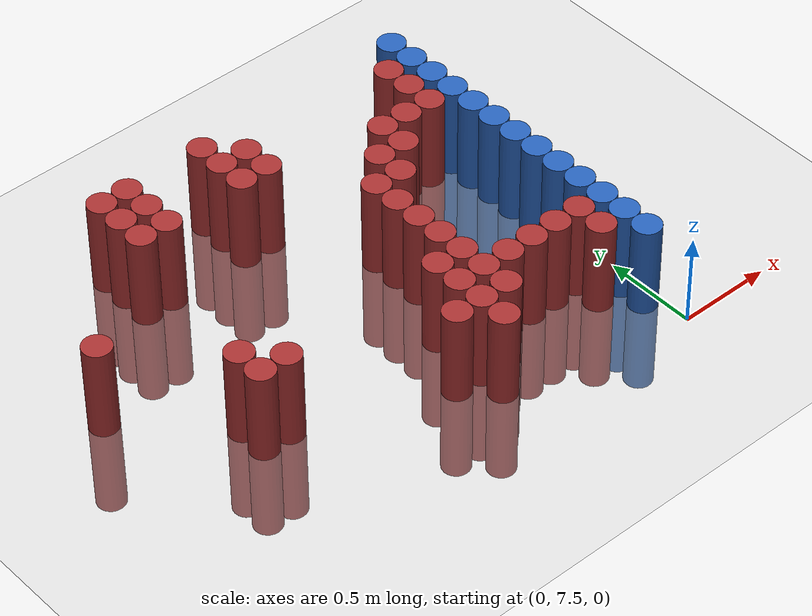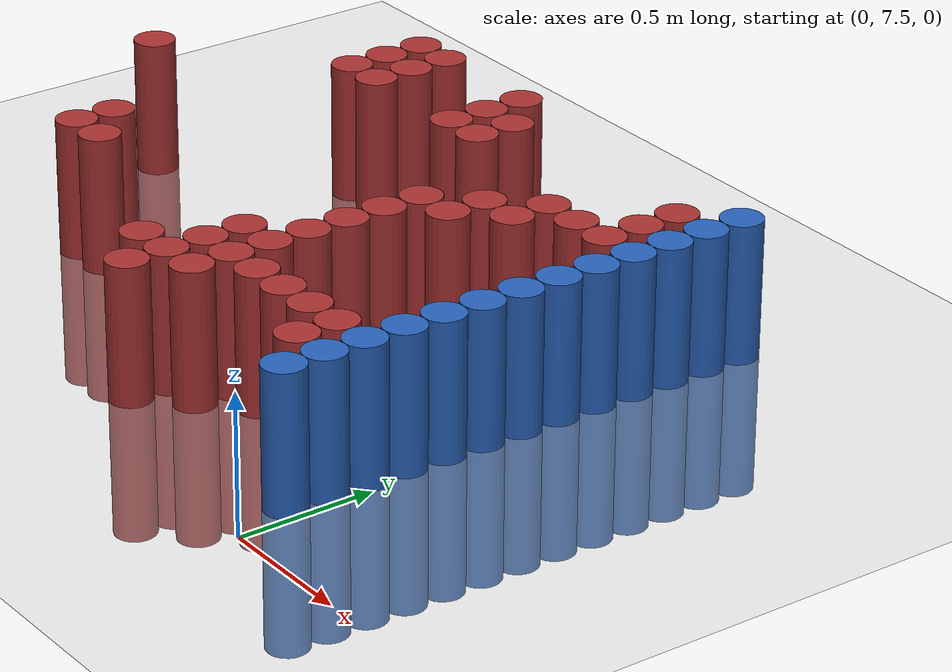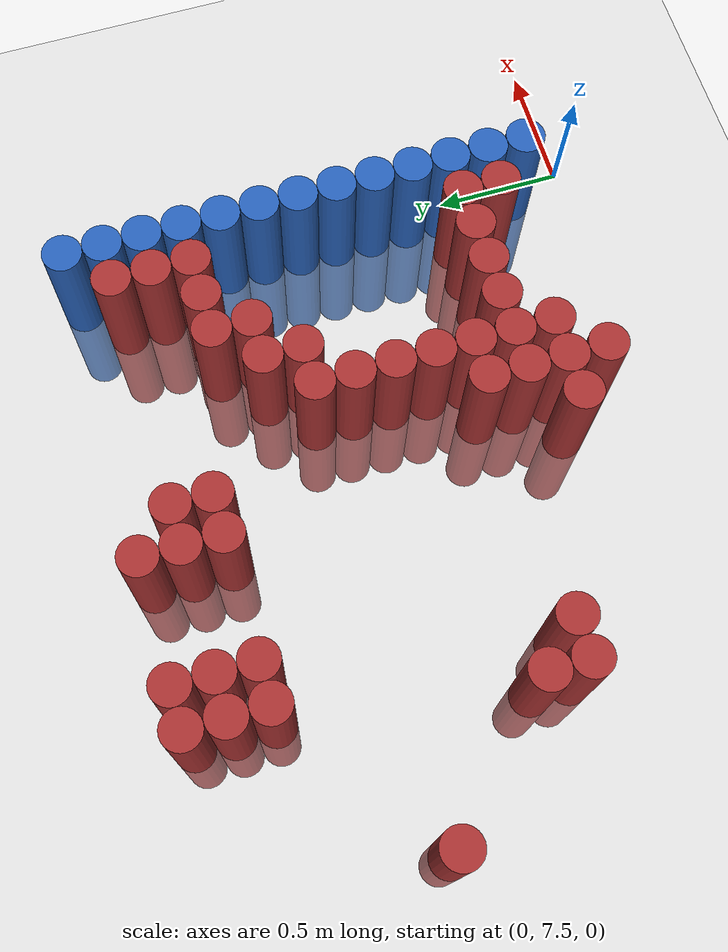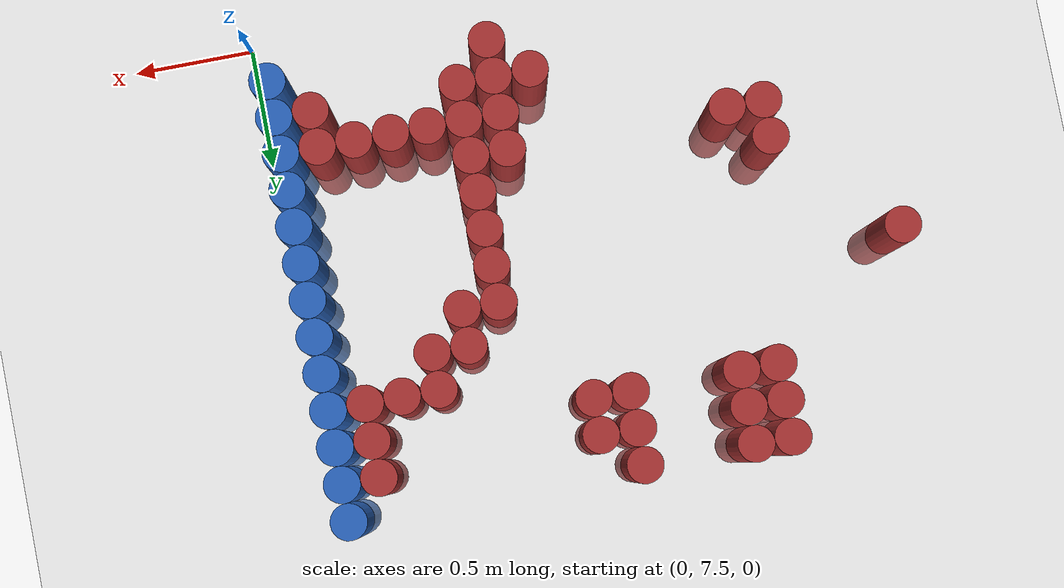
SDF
<sdf version="1.6">
 <world name="default">
  <model name="ground_plane">
   <static>1</static>
   <link name="link">
    <collision name="collision">
     <geometry><plane><normal>0 0 1</normal><size>100 100</size></plane></geometry>
     <surface><friction><ode><mu>100</mu><mu2>50</mu2></ode></friction></surface>
    </collision>
    <visual name="visual">
     <cast_shadows>0</cast_shadows>
     <geometry><plane><normal>0 0 1</normal><size>100 100</size></plane></geometry>
     <material>
      <script><uri>file://media/materials/scripts/gazebo.material</uri><name>Gazebo/Grey</name></script>
     </material>
    </visual>
   </link>
  </model>
  <model name="unit_cylinder_174">
   <static>1</static>
   <pose>-2.475000 8.775000 0.000000 0.000000 0.000000 0.000000</pose>
   <link name="link">
    <inertial>
     <mass>1</mass>
     <inertia><ixx>0.145833</ixx><ixy>0</ixy><ixz>0</ixz><iyy>0.145833</iyy><iyz>0</iyz><izz>0.125</izz></inertia>
    </inertial>
    <collision name="collision">
     <geometry><cylinder><radius>0.075000</radius><length>1</length></cylinder></geometry>
    </collision>
    <visual name="visual">
     <geometry><cylinder><radius>0.075000</radius><length>1</length></cylinder></geometry>
     <material>
      <ambient>0.648000 0.192000 0.192000 1</ambient>
      <diffuse>0.648000 0.192000 0.192000 1</diffuse>
     </material>
     <material>
      <script><name>Gazebo/Grey</name><uri>file://media/materials/scripts/gazebo.material</uri></script>
     </material>
    </visual>
   </link>
  </model>
  <model name="unit_cylinder_191">
   <static>1</static>
   <pose>-2.025000 8.175000 0.000000 0.000000 0.000000 0.000000</pose>
   <link name="link">
    <inertial>
     <mass>1</mass>
     <inertia><ixx>0.145833</ixx><ixy>0</ixy><ixz>0</ixz><iyy>0.145833</iyy><iyz>0</iyz><izz>0.125</izz></inertia>
    </inertial>
    <collision name="collision">
     <geometry><cylinder><radius>0.075000</radius><length>1</length></cylinder></geometry>
    </collision>
    <visual name="visual">
     <geometry><cylinder><radius>0.075000</radius><length>1</length></cylinder></geometry>
     <material>
      <ambient>0.648000 0.192000 0.192000 1</ambient>
      <diffuse>0.648000 0.192000 0.192000 1</diffuse>
     </material>
     <material>
      <script><name>Gazebo/Grey</name><uri>file://media/materials/scripts/gazebo.material</uri></script>
     </material>
    </visual>
   </link>
  </model>
  <model name="unit_cylinder_192">
   <static>1</static>
   <pose>-2.025000 8.325000 0.000000 0.000000 0.000000 0.000000</pose>
   <link name="link">
    <inertial>
     <mass>1</mass>
     <inertia><ixx>0.145833</ixx><ixy>0</ixy><ixz>0</ixz><iyy>0.145833</iyy><iyz>0</iyz><izz>0.125</izz></inertia>
    </inertial>
    <collision name="collision">
     <geometry><cylinder><radius>0.075000</radius><length>1</length></cylinder></geometry>
    </collision>
    <visual name="visual">
     <geometry><cylinder><radius>0.075000</radius><length>1</length></cylinder></geometry>
     <material>
      <ambient>0.648000 0.192000 0.192000 1</ambient>
      <diffuse>0.648000 0.192000 0.192000 1</diffuse>
     </material>
     <material>
      <script><name>Gazebo/Grey</name><uri>file://media/materials/scripts/gazebo.material</uri></script>
     </material>
    </visual>
   </link>
  </model>
  <model name="unit_cylinder_201">
   <static>1</static>
   <pose>-1.875000 8.175000 0.000000 0.000000 0.000000 0.000000</pose>
   <link name="link">
    <inertial>
     <mass>1</mass>
     <inertia><ixx>0.145833</ixx><ixy>0</ixy><ixz>0</ixz><iyy>0.145833</iyy><iyz>0</iyz><izz>0.125</izz></inertia>
    </inertial>
    <collision name="collision">
     <geometry><cylinder><radius>0.075000</radius><length>1</length></cylinder></geometry>
    </collision>
    <visual name="visual">
     <geometry><cylinder><radius>0.075000</radius><length>1</length></cylinder></geometry>
     <material>
      <ambient>0.648000 0.192000 0.192000 1</ambient>
      <diffuse>0.648000 0.192000 0.192000 1</diffuse>
     </material>
     <material>
      <script><name>Gazebo/Grey</name><uri>file://media/materials/scripts/gazebo.material</uri></script>
     </material>
    </visual>
   </link>
  </model>
  <model name="unit_cylinder_202">
   <static>1</static>
   <pose>-1.875000 9.225000 0.000000 0.000000 0.000000 0.000000</pose>
   <link name="link">
    <inertial>
     <mass>1</mass>
     <inertia><ixx>0.145833</ixx><ixy>0</ixy><ixz>0</ixz><iyy>0.145833</iyy><iyz>0</iyz><izz>0.125</izz></inertia>
    </inertial>
    <collision name="collision">
     <geometry><cylinder><radius>0.075000</radius><length>1</length></cylinder></geometry>
    </collision>
    <visual name="visual">
     <geometry><cylinder><radius>0.075000</radius><length>1</length></cylinder></geometry>
     <material>
      <ambient>0.648000 0.192000 0.192000 1</ambient>
      <diffuse>0.648000 0.192000 0.192000 1</diffuse>
     </material>
     <material>
      <script><name>Gazebo/Grey</name><uri>file://media/materials/scripts/gazebo.material</uri></script>
     </material>
    </visual>
   </link>
  </model>
  <model name="unit_cylinder_203">
   <static>1</static>
   <pose>-1.875000 9.375000 0.000000 0.000000 0.000000 0.000000</pose>
   <link name="link">
    <inertial>
     <mass>1</mass>
     <inertia><ixx>0.145833</ixx><ixy>0</ixy><ixz>0</ixz><iyy>0.145833</iyy><iyz>0</iyz><izz>0.125</izz></inertia>
    </inertial>
    <collision name="collision">
     <geometry><cylinder><radius>0.075000</radius><length>1</length></cylinder></geometry>
    </collision>
    <visual name="visual">
     <geometry><cylinder><radius>0.075000</radius><length>1</length></cylinder></geometry>
     <material>
      <ambient>0.648000 0.192000 0.192000 1</ambient>
      <diffuse>0.648000 0.192000 0.192000 1</diffuse>
     </material>
     <material>
      <script><name>Gazebo/Grey</name><uri>file://media/materials/scripts/gazebo.material</uri></script>
     </material>
    </visual>
   </link>
  </model>
  <model name="unit_cylinder_204">
   <static>1</static>
   <pose>-1.875000 9.525000 0.000000 0.000000 0.000000 0.000000</pose>
   <link name="link">
    <inertial>
     <mass>1</mass>
     <inertia><ixx>0.145833</ixx><ixy>0</ixy><ixz>0</ixz><iyy>0.145833</iyy><iyz>0</iyz><izz>0.125</izz></inertia>
    </inertial>
    <collision name="collision">
     <geometry><cylinder><radius>0.075000</radius><length>1</length></cylinder></geometry>
    </collision>
    <visual name="visual">
     <geometry><cylinder><radius>0.075000</radius><length>1</length></cylinder></geometry>
     <material>
      <ambient>0.648000 0.192000 0.192000 1</ambient>
      <diffuse>0.648000 0.192000 0.192000 1</diffuse>
     </material>
     <material>
      <script><name>Gazebo/Grey</name><uri>file://media/materials/scripts/gazebo.material</uri></script>
     </material>
    </visual>
   </link>
  </model>
  <model name="unit_cylinder_211">
   <static>1</static>
   <pose>-1.725000 9.225000 0.000000 0.000000 0.000000 0.000000</pose>
   <link name="link">
    <inertial>
     <mass>1</mass>
     <inertia><ixx>0.145833</ixx><ixy>0</ixy><ixz>0</ixz><iyy>0.145833</iyy><iyz>0</iyz><izz>0.125</izz></inertia>
    </inertial>
    <collision name="collision">
     <geometry><cylinder><radius>0.075000</radius><length>1</length></cylinder></geometry>
    </collision>
    <visual name="visual">
     <geometry><cylinder><radius>0.075000</radius><length>1</length></cylinder></geometry>
     <material>
      <ambient>0.648000 0.192000 0.192000 1</ambient>
      <diffuse>0.648000 0.192000 0.192000 1</diffuse>
     </material>
     <material>
      <script><name>Gazebo/Grey</name><uri>file://media/materials/scripts/gazebo.material</uri></script>
     </material>
    </visual>
   </link>
  </model>
  <model name="unit_cylinder_212">
   <static>1</static>
   <pose>-1.725000 9.375000 0.000000 0.000000 0.000000 0.000000</pose>
   <link name="link">
    <inertial>
     <mass>1</mass>
     <inertia><ixx>0.145833</ixx><ixy>0</ixy><ixz>0</ixz><iyy>0.145833</iyy><iyz>0</iyz><izz>0.125</izz></inertia>
    </inertial>
    <collision name="collision">
     <geometry><cylinder><radius>0.075000</radius><length>1</length></cylinder></geometry>
    </collision>
    <visual name="visual">
     <geometry><cylinder><radius>0.075000</radius><length>1</length></cylinder></geometry>
     <material>
      <ambient>0.648000 0.192000 0.192000 1</ambient>
      <diffuse>0.648000 0.192000 0.192000 1</diffuse>
     </material>
     <material>
      <script><name>Gazebo/Grey</name><uri>file://media/materials/scripts/gazebo.material</uri></script>
     </material>
    </visual>
   </link>
  </model>
  <model name="unit_cylinder_213">
   <static>1</static>
   <pose>-1.725000 9.525000 0.000000 0.000000 0.000000 0.000000</pose>
   <link name="link">
    <inertial>
     <mass>1</mass>
     <inertia><ixx>0.145833</ixx><ixy>0</ixy><ixz>0</ixz><iyy>0.145833</iyy><iyz>0</iyz><izz>0.125</izz></inertia>
    </inertial>
    <collision name="collision">
     <geometry><cylinder><radius>0.075000</radius><length>1</length></cylinder></geometry>
    </collision>
    <visual name="visual">
     <geometry><cylinder><radius>0.075000</radius><length>1</length></cylinder></geometry>
     <material>
      <ambient>0.648000 0.192000 0.192000 1</ambient>
      <diffuse>0.648000 0.192000 0.192000 1</diffuse>
     </material>
     <material>
      <script><name>Gazebo/Grey</name><uri>file://media/materials/scripts/gazebo.material</uri></script>
     </material>
    </visual>
   </link>
  </model>
  <model name="unit_cylinder_223">
   <static>1</static>
   <pose>-1.275000 9.225000 0.000000 0.000000 0.000000 0.000000</pose>
   <link name="link">
    <inertial>
     <mass>1</mass>
     <inertia><ixx>0.145833</ixx><ixy>0</ixy><ixz>0</ixz><iyy>0.145833</iyy><iyz>0</iyz><izz>0.125</izz></inertia>
    </inertial>
    <collision name="collision">
     <geometry><cylinder><radius>0.075000</radius><length>1</length></cylinder></geometry>
    </collision>
    <visual name="visual">
     <geometry><cylinder><radius>0.075000</radius><length>1</length></cylinder></geometry>
     <material>
      <ambient>0.648000 0.192000 0.192000 1</ambient>
      <diffuse>0.648000 0.192000 0.192000 1</diffuse>
     </material>
     <material>
      <script><name>Gazebo/Grey</name><uri>file://media/materials/scripts/gazebo.material</uri></script>
     </material>
    </visual>
   </link>
  </model>
  <model name="unit_cylinder_224">
   <static>1</static>
   <pose>-1.275000 9.375000 0.000000 0.000000 0.000000 0.000000</pose>
   <link name="link">
    <inertial>
     <mass>1</mass>
     <inertia><ixx>0.145833</ixx><ixy>0</ixy><ixz>0</ixz><iyy>0.145833</iyy><iyz>0</iyz><izz>0.125</izz></inertia>
    </inertial>
    <collision name="collision">
     <geometry><cylinder><radius>0.075000</radius><length>1</length></cylinder></geometry>
    </collision>
    <visual name="visual">
     <geometry><cylinder><radius>0.075000</radius><length>1</length></cylinder></geometry>
     <material>
      <ambient>0.648000 0.192000 0.192000 1</ambient>
      <diffuse>0.648000 0.192000 0.192000 1</diffuse>
     </material>
     <material>
      <script><name>Gazebo/Grey</name><uri>file://media/materials/scripts/gazebo.material</uri></script>
     </material>
    </visual>
   </link>
  </model>
  <model name="unit_cylinder_225">
   <static>1</static>
   <pose>-1.275000 9.525000 0.000000 0.000000 0.000000 0.000000</pose>
   <link name="link">
    <inertial>
     <mass>1</mass>
     <inertia><ixx>0.145833</ixx><ixy>0</ixy><ixz>0</ixz><iyy>0.145833</iyy><iyz>0</iyz><izz>0.125</izz></inertia>
    </inertial>
    <collision name="collision">
     <geometry><cylinder><radius>0.075000</radius><length>1</length></cylinder></geometry>
    </collision>
    <visual name="visual">
     <geometry><cylinder><radius>0.075000</radius><length>1</length></cylinder></geometry>
     <material>
      <ambient>0.648000 0.192000 0.192000 1</ambient>
      <diffuse>0.648000 0.192000 0.192000 1</diffuse>
     </material>
     <material>
      <script><name>Gazebo/Grey</name><uri>file://media/materials/scripts/gazebo.material</uri></script>
     </material>
    </visual>
   </link>
  </model>
  <model name="unit_cylinder_231">
   <static>1</static>
   <pose>-1.125000 7.875000 0.000000 0.000000 0.000000 0.000000</pose>
   <link name="link">
    <inertial>
     <mass>1</mass>
     <inertia><ixx>0.145833</ixx><ixy>0</ixy><ixz>0</ixz><iyy>0.145833</iyy><iyz>0</iyz><izz>0.125</izz></inertia>
    </inertial>
    <collision name="collision">
     <geometry><cylinder><radius>0.075000</radius><length>1</length></cylinder></geometry>
    </collision>
    <visual name="visual">
     <geometry><cylinder><radius>0.075000</radius><length>1</length></cylinder></geometry>
     <material>
      <ambient>0.648000 0.192000 0.192000 1</ambient>
      <diffuse>0.648000 0.192000 0.192000 1</diffuse>
     </material>
     <material>
      <script><name>Gazebo/Grey</name><uri>file://media/materials/scripts/gazebo.material</uri></script>
     </material>
    </visual>
   </link>
  </model>
  <model name="unit_cylinder_232">
   <static>1</static>
   <pose>-1.125000 9.225000 0.000000 0.000000 0.000000 0.000000</pose>
   <link name="link">
    <inertial>
     <mass>1</mass>
     <inertia><ixx>0.145833</ixx><ixy>0</ixy><ixz>0</ixz><iyy>0.145833</iyy><iyz>0</iyz><izz>0.125</izz></inertia>
    </inertial>
    <collision name="collision">
     <geometry><cylinder><radius>0.075000</radius><length>1</length></cylinder></geometry>
    </collision>
    <visual name="visual">
     <geometry><cylinder><radius>0.075000</radius><length>1</length></cylinder></geometry>
     <material>
      <ambient>0.648000 0.192000 0.192000 1</ambient>
      <diffuse>0.648000 0.192000 0.192000 1</diffuse>
     </material>
     <material>
      <script><name>Gazebo/Grey</name><uri>file://media/materials/scripts/gazebo.material</uri></script>
     </material>
    </visual>
   </link>
  </model>
  <model name="unit_cylinder_233">
   <static>1</static>
   <pose>-1.125000 9.375000 0.000000 0.000000 0.000000 0.000000</pose>
   <link name="link">
    <inertial>
     <mass>1</mass>
     <inertia><ixx>0.145833</ixx><ixy>0</ixy><ixz>0</ixz><iyy>0.145833</iyy><iyz>0</iyz><izz>0.125</izz></inertia>
    </inertial>
    <collision name="collision">
     <geometry><cylinder><radius>0.075000</radius><length>1</length></cylinder></geometry>
    </collision>
    <visual name="visual">
     <geometry><cylinder><radius>0.075000</radius><length>1</length></cylinder></geometry>
     <material>
      <ambient>0.648000 0.192000 0.192000 1</ambient>
      <diffuse>0.648000 0.192000 0.192000 1</diffuse>
     </material>
     <material>
      <script><name>Gazebo/Grey</name><uri>file://media/materials/scripts/gazebo.material</uri></script>
     </material>
    </visual>
   </link>
  </model>
  <model name="unit_cylinder_239">
   <static>1</static>
   <pose>-0.975000 7.725000 0.000000 0.000000 0.000000 0.000000</pose>
   <link name="link">
    <inertial>
     <mass>1</mass>
     <inertia><ixx>0.145833</ixx><ixy>0</ixy><ixz>0</ixz><iyy>0.145833</iyy><iyz>0</iyz><izz>0.125</izz></inertia>
    </inertial>
    <collision name="collision">
     <geometry><cylinder><radius>0.075000</radius><length>1</length></cylinder></geometry>
    </collision>
    <visual name="visual">
     <geometry><cylinder><radius>0.075000</radius><length>1</length></cylinder></geometry>
     <material>
      <ambient>0.648000 0.192000 0.192000 1</ambient>
      <diffuse>0.648000 0.192000 0.192000 1</diffuse>
     </material>
     <material>
      <script><name>Gazebo/Grey</name><uri>file://media/materials/scripts/gazebo.material</uri></script>
     </material>
    </visual>
   </link>
  </model>
  <model name="unit_cylinder_240">
   <static>1</static>
   <pose>-0.975000 7.875000 0.000000 0.000000 0.000000 0.000000</pose>
   <link name="link">
    <inertial>
     <mass>1</mass>
     <inertia><ixx>0.145833</ixx><ixy>0</ixy><ixz>0</ixz><iyy>0.145833</iyy><iyz>0</iyz><izz>0.125</izz></inertia>
    </inertial>
    <collision name="collision">
     <geometry><cylinder><radius>0.075000</radius><length>1</length></cylinder></geometry>
    </collision>
    <visual name="visual">
     <geometry><cylinder><radius>0.075000</radius><length>1</length></cylinder></geometry>
     <material>
      <ambient>0.648000 0.192000 0.192000 1</ambient>
      <diffuse>0.648000 0.192000 0.192000 1</diffuse>
     </material>
     <material>
      <script><name>Gazebo/Grey</name><uri>file://media/materials/scripts/gazebo.material</uri></script>
     </material>
    </visual>
   </link>
  </model>
  <model name="unit_cylinder_241">
   <static>1</static>
   <pose>-0.975000 8.025000 0.000000 0.000000 0.000000 0.000000</pose>
   <link name="link">
    <inertial>
     <mass>1</mass>
     <inertia><ixx>0.145833</ixx><ixy>0</ixy><ixz>0</ixz><iyy>0.145833</iyy><iyz>0</iyz><izz>0.125</izz></inertia>
    </inertial>
    <collision name="collision">
     <geometry><cylinder><radius>0.075000</radius><length>1</length></cylinder></geometry>
    </collision>
    <visual name="visual">
     <geometry><cylinder><radius>0.075000</radius><length>1</length></cylinder></geometry>
     <material>
      <ambient>0.648000 0.192000 0.192000 1</ambient>
      <diffuse>0.648000 0.192000 0.192000 1</diffuse>
     </material>
     <material>
      <script><name>Gazebo/Grey</name><uri>file://media/materials/scripts/gazebo.material</uri></script>
     </material>
    </visual>
   </link>
  </model>
  <model name="unit_cylinder_242">
   <static>1</static>
   <pose>-0.975000 8.175000 0.000000 0.000000 0.000000 0.000000</pose>
   <link name="link">
    <inertial>
     <mass>1</mass>
     <inertia><ixx>0.145833</ixx><ixy>0</ixy><ixz>0</ixz><iyy>0.145833</iyy><iyz>0</iyz><izz>0.125</izz></inertia>
    </inertial>
    <collision name="collision">
     <geometry><cylinder><radius>0.075000</radius><length>1</length></cylinder></geometry>
    </collision>
    <visual name="visual">
     <geometry><cylinder><radius>0.075000</radius><length>1</length></cylinder></geometry>
     <material>
      <ambient>0.648000 0.192000 0.192000 1</ambient>
      <diffuse>0.648000 0.192000 0.192000 1</diffuse>
     </material>
     <material>
      <script><name>Gazebo/Grey</name><uri>file://media/materials/scripts/gazebo.material</uri></script>
     </material>
    </visual>
   </link>
  </model>
  <model name="unit_cylinder_247">
   <static>1</static>
   <pose>-0.825000 7.875000 0.000000 0.000000 0.000000 0.000000</pose>
   <link name="link">
    <inertial>
     <mass>1</mass>
     <inertia><ixx>0.145833</ixx><ixy>0</ixy><ixz>0</ixz><iyy>0.145833</iyy><iyz>0</iyz><izz>0.125</izz></inertia>
    </inertial>
    <collision name="collision">
     <geometry><cylinder><radius>0.075000</radius><length>1</length></cylinder></geometry>
    </collision>
    <visual name="visual">
     <geometry><cylinder><radius>0.075000</radius><length>1</length></cylinder></geometry>
     <material>
      <ambient>0.648000 0.192000 0.192000 1</ambient>
      <diffuse>0.648000 0.192000 0.192000 1</diffuse>
     </material>
     <material>
      <script><name>Gazebo/Grey</name><uri>file://media/materials/scripts/gazebo.material</uri></script>
     </material>
    </visual>
   </link>
  </model>
  <model name="unit_cylinder_248">
   <static>1</static>
   <pose>-0.825000 8.025000 0.000000 0.000000 0.000000 0.000000</pose>
   <link name="link">
    <inertial>
     <mass>1</mass>
     <inertia><ixx>0.145833</ixx><ixy>0</ixy><ixz>0</ixz><iyy>0.145833</iyy><iyz>0</iyz><izz>0.125</izz></inertia>
    </inertial>
    <collision name="collision">
     <geometry><cylinder><radius>0.075000</radius><length>1</length></cylinder></geometry>
    </collision>
    <visual name="visual">
     <geometry><cylinder><radius>0.075000</radius><length>1</length></cylinder></geometry>
     <material>
      <ambient>0.648000 0.192000 0.192000 1</ambient>
      <diffuse>0.648000 0.192000 0.192000 1</diffuse>
     </material>
     <material>
      <script><name>Gazebo/Grey</name><uri>file://media/materials/scripts/gazebo.material</uri></script>
     </material>
    </visual>
   </link>
  </model>
  <model name="unit_cylinder_249">
   <static>1</static>
   <pose>-0.825000 8.175000 0.000000 0.000000 0.000000 0.000000</pose>
   <link name="link">
    <inertial>
     <mass>1</mass>
     <inertia><ixx>0.145833</ixx><ixy>0</ixy><ixz>0</ixz><iyy>0.145833</iyy><iyz>0</iyz><izz>0.125</izz></inertia>
    </inertial>
    <collision name="collision">
     <geometry><cylinder><radius>0.075000</radius><length>1</length></cylinder></geometry>
    </collision>
    <visual name="visual">
     <geometry><cylinder><radius>0.075000</radius><length>1</length></cylinder></geometry>
     <material>
      <ambient>0.648000 0.192000 0.192000 1</ambient>
      <diffuse>0.648000 0.192000 0.192000 1</diffuse>
     </material>
     <material>
      <script><name>Gazebo/Grey</name><uri>file://media/materials/scripts/gazebo.material</uri></script>
     </material>
    </visual>
   </link>
  </model>
  <model name="unit_cylinder_250">
   <static>1</static>
   <pose>-0.825000 8.325000 0.000000 0.000000 0.000000 0.000000</pose>
   <link name="link">
    <inertial>
     <mass>1</mass>
     <inertia><ixx>0.145833</ixx><ixy>0</ixy><ixz>0</ixz><iyy>0.145833</iyy><iyz>0</iyz><izz>0.125</izz></inertia>
    </inertial>
    <collision name="collision">
     <geometry><cylinder><radius>0.075000</radius><length>1</length></cylinder></geometry>
    </collision>
    <visual name="visual">
     <geometry><cylinder><radius>0.075000</radius><length>1</length></cylinder></geometry>
     <material>
      <ambient>0.648000 0.192000 0.192000 1</ambient>
      <diffuse>0.648000 0.192000 0.192000 1</diffuse>
     </material>
     <material>
      <script><name>Gazebo/Grey</name><uri>file://media/materials/scripts/gazebo.material</uri></script>
     </material>
    </visual>
   </link>
  </model>
  <model name="unit_cylinder_251">
   <static>1</static>
   <pose>-0.825000 8.475000 0.000000 0.000000 0.000000 0.000000</pose>
   <link name="link">
    <inertial>
     <mass>1</mass>
     <inertia><ixx>0.145833</ixx><ixy>0</ixy><ixz>0</ixz><iyy>0.145833</iyy><iyz>0</iyz><izz>0.125</izz></inertia>
    </inertial>
    <collision name="collision">
     <geometry><cylinder><radius>0.075000</radius><length>1</length></cylinder></geometry>
    </collision>
    <visual name="visual">
     <geometry><cylinder><radius>0.075000</radius><length>1</length></cylinder></geometry>
     <material>
      <ambient>0.648000 0.192000 0.192000 1</ambient>
      <diffuse>0.648000 0.192000 0.192000 1</diffuse>
     </material>
     <material>
      <script><name>Gazebo/Grey</name><uri>file://media/materials/scripts/gazebo.material</uri></script>
     </material>
    </visual>
   </link>
  </model>
  <model name="unit_cylinder_252">
   <static>1</static>
   <pose>-0.825000 8.625000 0.000000 0.000000 0.000000 0.000000</pose>
   <link name="link">
    <inertial>
     <mass>1</mass>
     <inertia><ixx>0.145833</ixx><ixy>0</ixy><ixz>0</ixz><iyy>0.145833</iyy><iyz>0</iyz><izz>0.125</izz></inertia>
    </inertial>
    <collision name="collision">
     <geometry><cylinder><radius>0.075000</radius><length>1</length></cylinder></geometry>
    </collision>
    <visual name="visual">
     <geometry><cylinder><radius>0.075000</radius><length>1</length></cylinder></geometry>
     <material>
      <ambient>0.648000 0.192000 0.192000 1</ambient>
      <diffuse>0.648000 0.192000 0.192000 1</diffuse>
     </material>
     <material>
      <script><name>Gazebo/Grey</name><uri>file://media/materials/scripts/gazebo.material</uri></script>
     </material>
    </visual>
   </link>
  </model>
  <model name="unit_cylinder_253">
   <static>1</static>
   <pose>-0.825000 8.775000 0.000000 0.000000 0.000000 0.000000</pose>
   <link name="link">
    <inertial>
     <mass>1</mass>
     <inertia><ixx>0.145833</ixx><ixy>0</ixy><ixz>0</ixz><iyy>0.145833</iyy><iyz>0</iyz><izz>0.125</izz></inertia>
    </inertial>
    <collision name="collision">
     <geometry><cylinder><radius>0.075000</radius><length>1</length></cylinder></geometry>
    </collision>
    <visual name="visual">
     <geometry><cylinder><radius>0.075000</radius><length>1</length></cylinder></geometry>
     <material>
      <ambient>0.648000 0.192000 0.192000 1</ambient>
      <diffuse>0.648000 0.192000 0.192000 1</diffuse>
     </material>
     <material>
      <script><name>Gazebo/Grey</name><uri>file://media/materials/scripts/gazebo.material</uri></script>
     </material>
    </visual>
   </link>
  </model>
  <model name="unit_cylinder_259">
   <static>1</static>
   <pose>-0.675000 8.025000 0.000000 0.000000 0.000000 0.000000</pose>
   <link name="link">
    <inertial>
     <mass>1</mass>
     <inertia><ixx>0.145833</ixx><ixy>0</ixy><ixz>0</ixz><iyy>0.145833</iyy><iyz>0</iyz><izz>0.125</izz></inertia>
    </inertial>
    <collision name="collision">
     <geometry><cylinder><radius>0.075000</radius><length>1</length></cylinder></geometry>
    </collision>
    <visual name="visual">
     <geometry><cylinder><radius>0.075000</radius><length>1</length></cylinder></geometry>
     <material>
      <ambient>0.648000 0.192000 0.192000 1</ambient>
      <diffuse>0.648000 0.192000 0.192000 1</diffuse>
     </material>
     <material>
      <script><name>Gazebo/Grey</name><uri>file://media/materials/scripts/gazebo.material</uri></script>
     </material>
    </visual>
   </link>
  </model>
  <model name="unit_cylinder_260">
   <static>1</static>
   <pose>-0.675000 8.775000 0.000000 0.000000 0.000000 0.000000</pose>
   <link name="link">
    <inertial>
     <mass>1</mass>
     <inertia><ixx>0.145833</ixx><ixy>0</ixy><ixz>0</ixz><iyy>0.145833</iyy><iyz>0</iyz><izz>0.125</izz></inertia>
    </inertial>
    <collision name="collision">
     <geometry><cylinder><radius>0.075000</radius><length>1</length></cylinder></geometry>
    </collision>
    <visual name="visual">
     <geometry><cylinder><radius>0.075000</radius><length>1</length></cylinder></geometry>
     <material>
      <ambient>0.648000 0.192000 0.192000 1</ambient>
      <diffuse>0.648000 0.192000 0.192000 1</diffuse>
     </material>
     <material>
      <script><name>Gazebo/Grey</name><uri>file://media/materials/scripts/gazebo.material</uri></script>
     </material>
    </visual>
   </link>
  </model>
  <model name="unit_cylinder_261">
   <static>1</static>
   <pose>-0.675000 8.925000 0.000000 0.000000 0.000000 0.000000</pose>
   <link name="link">
    <inertial>
     <mass>1</mass>
     <inertia><ixx>0.145833</ixx><ixy>0</ixy><ixz>0</ixz><iyy>0.145833</iyy><iyz>0</iyz><izz>0.125</izz></inertia>
    </inertial>
    <collision name="collision">
     <geometry><cylinder><radius>0.075000</radius><length>1</length></cylinder></geometry>
    </collision>
    <visual name="visual">
     <geometry><cylinder><radius>0.075000</radius><length>1</length></cylinder></geometry>
     <material>
      <ambient>0.648000 0.192000 0.192000 1</ambient>
      <diffuse>0.648000 0.192000 0.192000 1</diffuse>
     </material>
     <material>
      <script><name>Gazebo/Grey</name><uri>file://media/materials/scripts/gazebo.material</uri></script>
     </material>
    </visual>
   </link>
  </model>
  <model name="unit_cylinder_265">
   <static>1</static>
   <pose>-0.525000 8.025000 0.000000 0.000000 0.000000 0.000000</pose>
   <link name="link">
    <inertial>
     <mass>1</mass>
     <inertia><ixx>0.145833</ixx><ixy>0</ixy><ixz>0</ixz><iyy>0.145833</iyy><iyz>0</iyz><izz>0.125</izz></inertia>
    </inertial>
    <collision name="collision">
     <geometry><cylinder><radius>0.075000</radius><length>1</length></cylinder></geometry>
    </collision>
    <visual name="visual">
     <geometry><cylinder><radius>0.075000</radius><length>1</length></cylinder></geometry>
     <material>
      <ambient>0.648000 0.192000 0.192000 1</ambient>
      <diffuse>0.648000 0.192000 0.192000 1</diffuse>
     </material>
     <material>
      <script><name>Gazebo/Grey</name><uri>file://media/materials/scripts/gazebo.material</uri></script>
     </material>
    </visual>
   </link>
  </model>
  <model name="unit_cylinder_266">
   <static>1</static>
   <pose>-0.525000 8.925000 0.000000 0.000000 0.000000 0.000000</pose>
   <link name="link">
    <inertial>
     <mass>1</mass>
     <inertia><ixx>0.145833</ixx><ixy>0</ixy><ixz>0</ixz><iyy>0.145833</iyy><iyz>0</iyz><izz>0.125</izz></inertia>
    </inertial>
    <collision name="collision">
     <geometry><cylinder><radius>0.075000</radius><length>1</length></cylinder></geometry>
    </collision>
    <visual name="visual">
     <geometry><cylinder><radius>0.075000</radius><length>1</length></cylinder></geometry>
     <material>
      <ambient>0.648000 0.192000 0.192000 1</ambient>
      <diffuse>0.648000 0.192000 0.192000 1</diffuse>
     </material>
     <material>
      <script><name>Gazebo/Grey</name><uri>file://media/materials/scripts/gazebo.material</uri></script>
     </material>
    </visual>
   </link>
  </model>
  <model name="unit_cylinder_267">
   <static>1</static>
   <pose>-0.525000 9.075000 0.000000 0.000000 0.000000 0.000000</pose>
   <link name="link">
    <inertial>
     <mass>1</mass>
     <inertia><ixx>0.145833</ixx><ixy>0</ixy><ixz>0</ixz><iyy>0.145833</iyy><iyz>0</iyz><izz>0.125</izz></inertia>
    </inertial>
    <collision name="collision">
     <geometry><cylinder><radius>0.075000</radius><length>1</length></cylinder></geometry>
    </collision>
    <visual name="visual">
     <geometry><cylinder><radius>0.075000</radius><length>1</length></cylinder></geometry>
     <material>
      <ambient>0.648000 0.192000 0.192000 1</ambient>
      <diffuse>0.648000 0.192000 0.192000 1</diffuse>
     </material>
     <material>
      <script><name>Gazebo/Grey</name><uri>file://media/materials/scripts/gazebo.material</uri></script>
     </material>
    </visual>
   </link>
  </model>
  <model name="unit_cylinder_275">
   <static>1</static>
   <pose>-0.375000 8.025000 0.000000 0.000000 0.000000 0.000000</pose>
   <link name="link">
    <inertial>
     <mass>1</mass>
     <inertia><ixx>0.145833</ixx><ixy>0</ixy><ixz>0</ixz><iyy>0.145833</iyy><iyz>0</iyz><izz>0.125</izz></inertia>
    </inertial>
    <collision name="collision">
     <geometry><cylinder><radius>0.075000</radius><length>1</length></cylinder></geometry>
    </collision>
    <visual name="visual">
     <geometry><cylinder><radius>0.075000</radius><length>1</length></cylinder></geometry>
     <material>
      <ambient>0.648000 0.192000 0.192000 1</ambient>
      <diffuse>0.648000 0.192000 0.192000 1</diffuse>
     </material>
     <material>
      <script><name>Gazebo/Grey</name><uri>file://media/materials/scripts/gazebo.material</uri></script>
     </material>
    </visual>
   </link>
  </model>
  <model name="unit_cylinder_276">
   <static>1</static>
   <pose>-0.375000 9.075000 0.000000 0.000000 0.000000 0.000000</pose>
   <link name="link">
    <inertial>
     <mass>1</mass>
     <inertia><ixx>0.145833</ixx><ixy>0</ixy><ixz>0</ixz><iyy>0.145833</iyy><iyz>0</iyz><izz>0.125</izz></inertia>
    </inertial>
    <collision name="collision">
     <geometry><cylinder><radius>0.075000</radius><length>1</length></cylinder></geometry>
    </collision>
    <visual name="visual">
     <geometry><cylinder><radius>0.075000</radius><length>1</length></cylinder></geometry>
     <material>
      <ambient>0.648000 0.192000 0.192000 1</ambient>
      <diffuse>0.648000 0.192000 0.192000 1</diffuse>
     </material>
     <material>
      <script><name>Gazebo/Grey</name><uri>file://media/materials/scripts/gazebo.material</uri></script>
     </material>
    </visual>
   </link>
  </model>
  <model name="unit_cylinder_282">
   <static>1</static>
   <pose>-0.225000 7.875000 0.000000 0.000000 0.000000 0.000000</pose>
   <link name="link">
    <inertial>
     <mass>1</mass>
     <inertia><ixx>0.145833</ixx><ixy>0</ixy><ixz>0</ixz><iyy>0.145833</iyy><iyz>0</iyz><izz>0.125</izz></inertia>
    </inertial>
    <collision name="collision">
     <geometry><cylinder><radius>0.075000</radius><length>1</length></cylinder></geometry>
    </collision>
    <visual name="visual">
     <geometry><cylinder><radius>0.075000</radius><length>1</length></cylinder></geometry>
     <material>
      <ambient>0.648000 0.192000 0.192000 1</ambient>
      <diffuse>0.648000 0.192000 0.192000 1</diffuse>
     </material>
     <material>
      <script><name>Gazebo/Grey</name><uri>file://media/materials/scripts/gazebo.material</uri></script>
     </material>
    </visual>
   </link>
  </model>
  <model name="unit_cylinder_283">
   <static>1</static>
   <pose>-0.225000 8.025000 0.000000 0.000000 0.000000 0.000000</pose>
   <link name="link">
    <inertial>
     <mass>1</mass>
     <inertia><ixx>0.145833</ixx><ixy>0</ixy><ixz>0</ixz><iyy>0.145833</iyy><iyz>0</iyz><izz>0.125</izz></inertia>
    </inertial>
    <collision name="collision">
     <geometry><cylinder><radius>0.075000</radius><length>1</length></cylinder></geometry>
    </collision>
    <visual name="visual">
     <geometry><cylinder><radius>0.075000</radius><length>1</length></cylinder></geometry>
     <material>
      <ambient>0.648000 0.192000 0.192000 1</ambient>
      <diffuse>0.648000 0.192000 0.192000 1</diffuse>
     </material>
     <material>
      <script><name>Gazebo/Grey</name><uri>file://media/materials/scripts/gazebo.material</uri></script>
     </material>
    </visual>
   </link>
  </model>
  <model name="unit_cylinder_284">
   <static>1</static>
   <pose>-0.225000 9.075000 0.000000 0.000000 0.000000 0.000000</pose>
   <link name="link">
    <inertial>
     <mass>1</mass>
     <inertia><ixx>0.145833</ixx><ixy>0</ixy><ixz>0</ixz><iyy>0.145833</iyy><iyz>0</iyz><izz>0.125</izz></inertia>
    </inertial>
    <collision name="collision">
     <geometry><cylinder><radius>0.075000</radius><length>1</length></cylinder></geometry>
    </collision>
    <visual name="visual">
     <geometry><cylinder><radius>0.075000</radius><length>1</length></cylinder></geometry>
     <material>
      <ambient>0.648000 0.192000 0.192000 1</ambient>
      <diffuse>0.648000 0.192000 0.192000 1</diffuse>
     </material>
     <material>
      <script><name>Gazebo/Grey</name><uri>file://media/materials/scripts/gazebo.material</uri></script>
     </material>
    </visual>
   </link>
  </model>
  <model name="unit_cylinder_285">
   <static>1</static>
   <pose>-0.225000 9.225000 0.000000 0.000000 0.000000 0.000000</pose>
   <link name="link">
    <inertial>
     <mass>1</mass>
     <inertia><ixx>0.145833</ixx><ixy>0</ixy><ixz>0</ixz><iyy>0.145833</iyy><iyz>0</iyz><izz>0.125</izz></inertia>
    </inertial>
    <collision name="collision">
     <geometry><cylinder><radius>0.075000</radius><length>1</length></cylinder></geometry>
    </collision>
    <visual name="visual">
     <geometry><cylinder><radius>0.075000</radius><length>1</length></cylinder></geometry>
     <material>
      <ambient>0.648000 0.192000 0.192000 1</ambient>
      <diffuse>0.648000 0.192000 0.192000 1</diffuse>
     </material>
     <material>
      <script><name>Gazebo/Grey</name><uri>file://media/materials/scripts/gazebo.material</uri></script>
     </material>
    </visual>
   </link>
  </model>
  <model name="unit_cylinder_286">
   <static>1</static>
   <pose>-0.225000 9.375000 0.000000 0.000000 0.000000 0.000000</pose>
   <link name="link">
    <inertial>
     <mass>1</mass>
     <inertia><ixx>0.145833</ixx><ixy>0</ixy><ixz>0</ixz><iyy>0.145833</iyy><iyz>0</iyz><izz>0.125</izz></inertia>
    </inertial>
    <collision name="collision">
     <geometry><cylinder><radius>0.075000</radius><length>1</length></cylinder></geometry>
    </collision>
    <visual name="visual">
     <geometry><cylinder><radius>0.075000</radius><length>1</length></cylinder></geometry>
     <material>
      <ambient>0.648000 0.192000 0.192000 1</ambient>
      <diffuse>0.648000 0.192000 0.192000 1</diffuse>
     </material>
     <material>
      <script><name>Gazebo/Grey</name><uri>file://media/materials/scripts/gazebo.material</uri></script>
     </material>
    </visual>
   </link>
  </model>
  <model name="unit_cylinder_304">
   <static>1</static>
   <pose>-0.075000 7.725000 0.000000 0.000000 0.000000 0.000000</pose>
   <link name="link">
    <inertial>
     <mass>1</mass>
     <inertia><ixx>0.145833</ixx><ixy>0</ixy><ixz>0</ixz><iyy>0.145833</iyy><iyz>0</iyz><izz>0.125</izz></inertia>
    </inertial>
    <collision name="collision">
     <geometry><cylinder><radius>0.075000</radius><length>1</length></cylinder></geometry>
    </collision>
    <visual name="visual">
     <geometry><cylinder><radius>0.075000</radius><length>1</length></cylinder></geometry>
     <material>
      <ambient>0.152000 0.379000 0.720000 1</ambient>
      <diffuse>0.152000 0.379000 0.720000 1</diffuse>
     </material>
     <material>
      <script><name>Gazebo/Grey</name><uri>file://media/materials/scripts/gazebo.material</uri></script>
     </material>
    </visual>
   </link>
  </model>
  <model name="unit_cylinder_305">
   <static>1</static>
   <pose>-0.075000 7.875000 0.000000 0.000000 0.000000 0.000000</pose>
   <link name="link">
    <inertial>
     <mass>1</mass>
     <inertia><ixx>0.145833</ixx><ixy>0</ixy><ixz>0</ixz><iyy>0.145833</iyy><iyz>0</iyz><izz>0.125</izz></inertia>
    </inertial>
    <collision name="collision">
     <geometry><cylinder><radius>0.075000</radius><length>1</length></cylinder></geometry>
    </collision>
    <visual name="visual">
     <geometry><cylinder><radius>0.075000</radius><length>1</length></cylinder></geometry>
     <material>
      <ambient>0.152000 0.379000 0.720000 1</ambient>
      <diffuse>0.152000 0.379000 0.720000 1</diffuse>
     </material>
     <material>
      <script><name>Gazebo/Grey</name><uri>file://media/materials/scripts/gazebo.material</uri></script>
     </material>
    </visual>
   </link>
  </model>
  <model name="unit_cylinder_306">
   <static>1</static>
   <pose>-0.075000 8.025000 0.000000 0.000000 0.000000 0.000000</pose>
   <link name="link">
    <inertial>
     <mass>1</mass>
     <inertia><ixx>0.145833</ixx><ixy>0</ixy><ixz>0</ixz><iyy>0.145833</iyy><iyz>0</iyz><izz>0.125</izz></inertia>
    </inertial>
    <collision name="collision">
     <geometry><cylinder><radius>0.075000</radius><length>1</length></cylinder></geometry>
    </collision>
    <visual name="visual">
     <geometry><cylinder><radius>0.075000</radius><length>1</length></cylinder></geometry>
     <material>
      <ambient>0.152000 0.379000 0.720000 1</ambient>
      <diffuse>0.152000 0.379000 0.720000 1</diffuse>
     </material>
     <material>
      <script><name>Gazebo/Grey</name><uri>file://media/materials/scripts/gazebo.material</uri></script>
     </material>
    </visual>
   </link>
  </model>
  <model name="unit_cylinder_307">
   <static>1</static>
   <pose>-0.075000 8.175000 0.000000 0.000000 0.000000 0.000000</pose>
   <link name="link">
    <inertial>
     <mass>1</mass>
     <inertia><ixx>0.145833</ixx><ixy>0</ixy><ixz>0</ixz><iyy>0.145833</iyy><iyz>0</iyz><izz>0.125</izz></inertia>
    </inertial>
    <collision name="collision">
     <geometry><cylinder><radius>0.075000</radius><length>1</length></cylinder></geometry>
    </collision>
    <visual name="visual">
     <geometry><cylinder><radius>0.075000</radius><length>1</length></cylinder></geometry>
     <material>
      <ambient>0.152000 0.379000 0.720000 1</ambient>
      <diffuse>0.152000 0.379000 0.720000 1</diffuse>
     </material>
     <material>
      <script><name>Gazebo/Grey</name><uri>file://media/materials/scripts/gazebo.material</uri></script>
     </material>
    </visual>
   </link>
  </model>
  <model name="unit_cylinder_308">
   <static>1</static>
   <pose>-0.075000 8.325000 0.000000 0.000000 0.000000 0.000000</pose>
   <link name="link">
    <inertial>
     <mass>1</mass>
     <inertia><ixx>0.145833</ixx><ixy>0</ixy><ixz>0</ixz><iyy>0.145833</iyy><iyz>0</iyz><izz>0.125</izz></inertia>
    </inertial>
    <collision name="collision">
     <geometry><cylinder><radius>0.075000</radius><length>1</length></cylinder></geometry>
    </collision>
    <visual name="visual">
     <geometry><cylinder><radius>0.075000</radius><length>1</length></cylinder></geometry>
     <material>
      <ambient>0.152000 0.379000 0.720000 1</ambient>
      <diffuse>0.152000 0.379000 0.720000 1</diffuse>
     </material>
     <material>
      <script><name>Gazebo/Grey</name><uri>file://media/materials/scripts/gazebo.material</uri></script>
     </material>
    </visual>
   </link>
  </model>
  <model name="unit_cylinder_309">
   <static>1</static>
   <pose>-0.075000 8.475000 0.000000 0.000000 0.000000 0.000000</pose>
   <link name="link">
    <inertial>
     <mass>1</mass>
     <inertia><ixx>0.145833</ixx><ixy>0</ixy><ixz>0</ixz><iyy>0.145833</iyy><iyz>0</iyz><izz>0.125</izz></inertia>
    </inertial>
    <collision name="collision">
     <geometry><cylinder><radius>0.075000</radius><length>1</length></cylinder></geometry>
    </collision>
    <visual name="visual">
     <geometry><cylinder><radius>0.075000</radius><length>1</length></cylinder></geometry>
     <material>
      <ambient>0.152000 0.379000 0.720000 1</ambient>
      <diffuse>0.152000 0.379000 0.720000 1</diffuse>
     </material>
     <material>
      <script><name>Gazebo/Grey</name><uri>file://media/materials/scripts/gazebo.material</uri></script>
     </material>
    </visual>
   </link>
  </model>
  <model name="unit_cylinder_310">
   <static>1</static>
   <pose>-0.075000 8.625000 0.000000 0.000000 0.000000 0.000000</pose>
   <link name="link">
    <inertial>
     <mass>1</mass>
     <inertia><ixx>0.145833</ixx><ixy>0</ixy><ixz>0</ixz><iyy>0.145833</iyy><iyz>0</iyz><izz>0.125</izz></inertia>
    </inertial>
    <collision name="collision">
     <geometry><cylinder><radius>0.075000</radius><length>1</length></cylinder></geometry>
    </collision>
    <visual name="visual">
     <geometry><cylinder><radius>0.075000</radius><length>1</length></cylinder></geometry>
     <material>
      <ambient>0.152000 0.379000 0.720000 1</ambient>
      <diffuse>0.152000 0.379000 0.720000 1</diffuse>
     </material>
     <material>
      <script><name>Gazebo/Grey</name><uri>file://media/materials/scripts/gazebo.material</uri></script>
     </material>
    </visual>
   </link>
  </model>
  <model name="unit_cylinder_311">
   <static>1</static>
   <pose>-0.075000 8.775000 0.000000 0.000000 0.000000 0.000000</pose>
   <link name="link">
    <inertial>
     <mass>1</mass>
     <inertia><ixx>0.145833</ixx><ixy>0</ixy><ixz>0</ixz><iyy>0.145833</iyy><iyz>0</iyz><izz>0.125</izz></inertia>
    </inertial>
    <collision name="collision">
     <geometry><cylinder><radius>0.075000</radius><length>1</length></cylinder></geometry>
    </collision>
    <visual name="visual">
     <geometry><cylinder><radius>0.075000</radius><length>1</length></cylinder></geometry>
     <material>
      <ambient>0.152000 0.379000 0.720000 1</ambient>
      <diffuse>0.152000 0.379000 0.720000 1</diffuse>
     </material>
     <material>
      <script><name>Gazebo/Grey</name><uri>file://media/materials/scripts/gazebo.material</uri></script>
     </material>
    </visual>
   </link>
  </model>
  <model name="unit_cylinder_312">
   <static>1</static>
   <pose>-0.075000 8.925000 0.000000 0.000000 0.000000 0.000000</pose>
   <link name="link">
    <inertial>
     <mass>1</mass>
     <inertia><ixx>0.145833</ixx><ixy>0</ixy><ixz>0</ixz><iyy>0.145833</iyy><iyz>0</iyz><izz>0.125</izz></inertia>
    </inertial>
    <collision name="collision">
     <geometry><cylinder><radius>0.075000</radius><length>1</length></cylinder></geometry>
    </collision>
    <visual name="visual">
     <geometry><cylinder><radius>0.075000</radius><length>1</length></cylinder></geometry>
     <material>
      <ambient>0.152000 0.379000 0.720000 1</ambient>
      <diffuse>0.152000 0.379000 0.720000 1</diffuse>
     </material>
     <material>
      <script><name>Gazebo/Grey</name><uri>file://media/materials/scripts/gazebo.material</uri></script>
     </material>
    </visual>
   </link>
  </model>
  <model name="unit_cylinder_313">
   <static>1</static>
   <pose>-0.075000 9.075000 0.000000 0.000000 0.000000 0.000000</pose>
   <link name="link">
    <inertial>
     <mass>1</mass>
     <inertia><ixx>0.145833</ixx><ixy>0</ixy><ixz>0</ixz><iyy>0.145833</iyy><iyz>0</iyz><izz>0.125</izz></inertia>
    </inertial>
    <collision name="collision">
     <geometry><cylinder><radius>0.075000</radius><length>1</length></cylinder></geometry>
    </collision>
    <visual name="visual">
     <geometry><cylinder><radius>0.075000</radius><length>1</length></cylinder></geometry>
     <material>
      <ambient>0.152000 0.379000 0.720000 1</ambient>
      <diffuse>0.152000 0.379000 0.720000 1</diffuse>
     </material>
     <material>
      <script><name>Gazebo/Grey</name><uri>file://media/materials/scripts/gazebo.material</uri></script>
     </material>
    </visual>
   </link>
  </model>
  <model name="unit_cylinder_314">
   <static>1</static>
   <pose>-0.075000 9.225000 0.000000 0.000000 0.000000 0.000000</pose>
   <link name="link">
    <inertial>
     <mass>1</mass>
     <inertia><ixx>0.145833</ixx><ixy>0</ixy><ixz>0</ixz><iyy>0.145833</iyy><iyz>0</iyz><izz>0.125</izz></inertia>
    </inertial>
    <collision name="collision">
     <geometry><cylinder><radius>0.075000</radius><length>1</length></cylinder></geometry>
    </collision>
    <visual name="visual">
     <geometry><cylinder><radius>0.075000</radius><length>1</length></cylinder></geometry>
     <material>
      <ambient>0.152000 0.379000 0.720000 1</ambient>
      <diffuse>0.152000 0.379000 0.720000 1</diffuse>
     </material>
     <material>
      <script><name>Gazebo/Grey</name><uri>file://media/materials/scripts/gazebo.material</uri></script>
     </material>
    </visual>
   </link>
  </model>
  <model name="unit_cylinder_315">
   <static>1</static>
   <pose>-0.075000 9.375000 0.000000 0.000000 0.000000 0.000000</pose>
   <link name="link">
    <inertial>
     <mass>1</mass>
     <inertia><ixx>0.145833</ixx><ixy>0</ixy><ixz>0</ixz><iyy>0.145833</iyy><iyz>0</iyz><izz>0.125</izz></inertia>
    </inertial>
    <collision name="collision">
     <geometry><cylinder><radius>0.075000</radius><length>1</length></cylinder></geometry>
    </collision>
    <visual name="visual">
     <geometry><cylinder><radius>0.075000</radius><length>1</length></cylinder></geometry>
     <material>
      <ambient>0.152000 0.379000 0.720000 1</ambient>
      <diffuse>0.152000 0.379000 0.720000 1</diffuse>
     </material>
     <material>
      <script><name>Gazebo/Grey</name><uri>file://media/materials/scripts/gazebo.material</uri></script>
     </material>
    </visual>
   </link>
  </model>
  <model name="unit_cylinder_316">
   <static>1</static>
   <pose>-0.075000 9.525000 0.000000 0.000000 0.000000 0.000000</pose>
   <link name="link">
    <inertial>
     <mass>1</mass>
     <inertia><ixx>0.145833</ixx><ixy>0</ixy><ixz>0</ixz><iyy>0.145833</iyy><iyz>0</iyz><izz>0.125</izz></inertia>
    </inertial>
    <collision name="collision">
     <geometry><cylinder><radius>0.075000</radius><length>1</length></cylinder></geometry>
    </collision>
    <visual name="visual">
     <geometry><cylinder><radius>0.075000</radius><length>1</length></cylinder></geometry>
     <material>
      <ambient>0.152000 0.379000 0.720000 1</ambient>
      <diffuse>0.152000 0.379000 0.720000 1</diffuse>
     </material>
     <material>
      <script><name>Gazebo/Grey</name><uri>file://media/materials/scripts/gazebo.material</uri></script>
     </material>
    </visual>
   </link>
  </model>
 </world>
</sdf>
